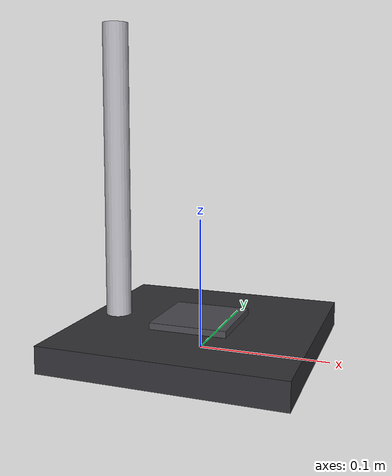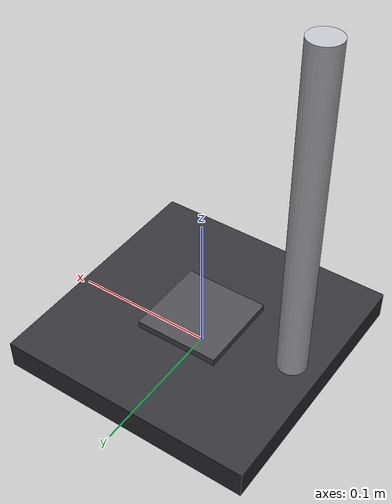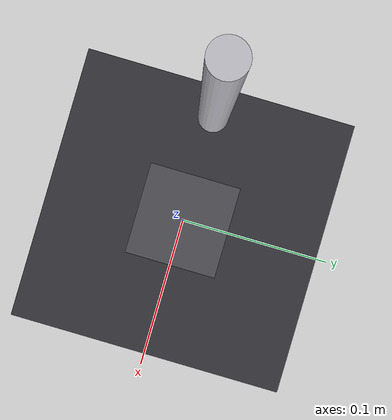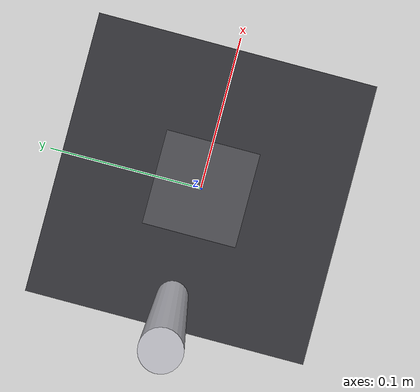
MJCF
<?xml version="1.0" encoding="utf-8"?>
<mujoco model="dip_pen_lithography_stage">
  <compiler angle="radian" autolimits="true"/>
  <default>
    <default class="body"><geom contype="1" conaffinity="1"/></default>
  </default>
  <worldbody>
    <body name="base">
      <geom type="box" size="0.09 0.09 0.01" pos="0 0 0.01" rgba="0.2 0.2 0.22 1" class="body"/>
      <geom type="cylinder" size="0.01 0.12" pos="-0.07 0 0.13" rgba="0.75 0.75 0.78 1" class="body"/>
      <body name="xy_stage" pos="0 0 0.02">
        <joint name="xy_stage_joint" type="slide" axis="1 0 0" range="-0.05 0.05" damping="1.0" frictionloss="0.3"/>
  <geom type="box" size="0.03 0.03 0.005" pos="0 0 0" rgba="0.3 0.3 0.32 1" class="body"/>
      </body>
    </body>
  </worldbody>
</mujoco>
